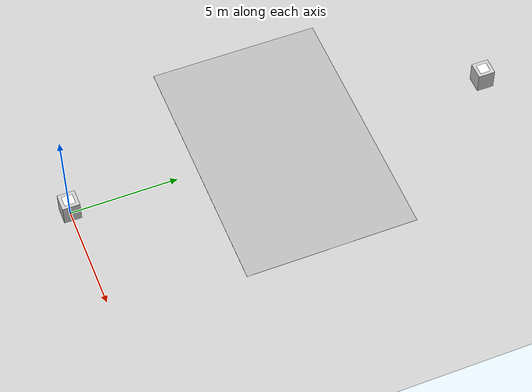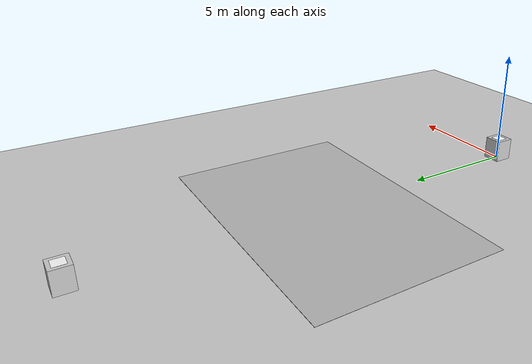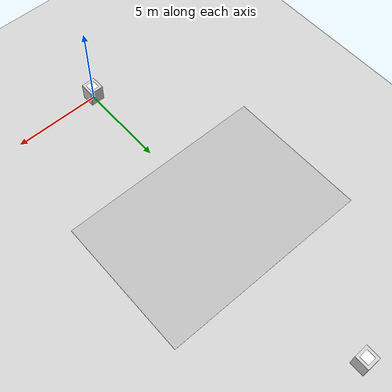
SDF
<sdf version="1.9">
 <world name="urban_delivery">
  <physics name="1ms" type="ignored">
   <max_step_size>0.004</max_step_size>
   <real_time_factor>1.0</real_time_factor>
  </physics>
  <plugin filename="gz-sim-physics-system" name="gz::sim::systems::Physics"/>
  <plugin filename="gz-sim-user-commands-system" name="gz::sim::systems::UserCommands"/>
  <plugin filename="gz-sim-scene-broadcaster-system" name="gz::sim::systems::SceneBroadcaster"/>
  <plugin filename="gz-sim-sensors-system" name="gz::sim::systems::Sensors">
   <render_engine>ogre2</render_engine>
  </plugin>
  <plugin filename="gz-sim-imu-system" name="gz::sim::systems::Imu"/>
  <plugin filename="gz-sim-magnetometer-system" name="gz::sim::systems::Magnetometer"/>
  <plugin filename="gz-sim-air-pressure-system" name="gz::sim::systems::AirPressure"/>
  <plugin filename="gz-sim-navsat-system" name="gz::sim::systems::NavSat"/>
  <scene><ambient>1.0 1.0 1.0</ambient><background>0.8 0.8 0.8</background></scene>
  <gravity>0 0 -9.8</gravity>
  <magnetic_field>6e-06 2.3e-05 -4.2e-05</magnetic_field>
  <atmosphere type="adiabatic"/>
  <spherical_coordinates>
   <surface_model>EARTH_WGS84</surface_model>
   <world_frame_orientation>ENU</world_frame_orientation>
   <latitude_deg>47.397971057728974</latitude_deg>
   <longitude_deg>8.546163739800146</longitude_deg>
   <elevation>0</elevation>
  </spherical_coordinates>
  <light type="directional" name="sun">
   <pose>0 0 10 0 0 0</pose>
   <diffuse>0.8 0.8 0.8 1</diffuse>
   <specular>0.2 0.2 0.2 1</specular>
   <attenuation>
    <range>1000</range>
    <constant>0.9</constant>
    <linear>0.01</linear>
    <quadratic>0.001</quadratic>
   </attenuation>
   <direction>-0.5 0.1 -0.9</direction>
  </light>
  <include><uri>model://ground_plane</uri></include>
  <include><uri>model://warehouse</uri><pose>0 10 0 0 0 0</pose></include>
  <include><name>landing_pad_0</name><uri>model://arucotag</uri><pose>0 0 0.5 0 0 0</pose></include>
  <include><name>landing_pad_1</name><uri>model://arucotag</uri><pose>0 20 0.5 0 0 0</pose></include>
 </world>
</sdf>

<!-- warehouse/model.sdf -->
<sdf version="1.5">
  <model name="warehouse">
    <static>true</static>

    <link name="link">
      <collision name="collision">
        <geometry>
          <mesh>
            <uri>model://warehouse/meshes/warehouse.dae</uri>
            <scale>1 1 1</scale>
          </mesh>
        </geometry>
      </collision>
      <visual name="visual">
        <geometry>
          <mesh>
            <uri>model://warehouse/meshes/warehouse.dae</uri>
            <scale>1 1 1</scale>
          </mesh>
        </geometry>
      </visual>
    </link>
  </model>
</sdf>

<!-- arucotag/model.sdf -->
<sdf version="1.9">
  <model name="arucotag">
    <static>true</static>
    <link name="base_link">
      <visual name="platform_visual">
        <pose>0 0 0 0 0 0</pose>
        <geometry>
          <box>
            <size>0.8 0.8 1.0</size>
          </box>
        </geometry>
        <material>
          <ambient>0.8 0.8 0.8 1</ambient>
          <diffuse>0.8 0.8 0.8 1</diffuse>
          <specular>0.2 0.2 0.2 1</specular>
        </material>
      </visual>
      <collision name="platform_collision">
        <pose>0 0 0 0 0 0</pose>
        <geometry>
          <box>
            <size>0.8 0.8 1.0</size>
          </box>
        </geometry>
      </collision>

      <!-- ArUco Marker Texture (On top of 1m box) -->
      <visual name="marker_visual">
        <pose>0 0 0.501 0 0 0</pose>
        <geometry>
          <box>
            <size>0.5 0.5 0.001</size>
          </box>
        </geometry>
        <material>
          <ambient>1 1 1 1</ambient>
          <diffuse>1 1 1 1</diffuse>
          <specular>0.4 0.4 0.4 1</specular>
          <pbr>
            <metal>
              <albedo_map>file:///home/wss/Dev/Robotics/workspaces/uav_ds/ros2_ws/src/uav_simulation/models/arucotag/materials/textures/aruco_marker_0.png</albedo_map>
              <roughness>0.6</roughness>
              <metalness>0.1</metalness>
            </metal>
          </pbr>
        </material>
      </visual>
    </link>
  </model>
</sdf>
